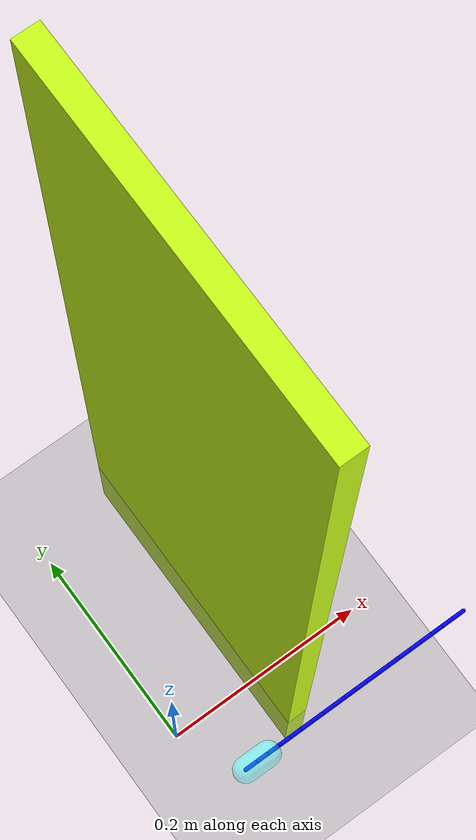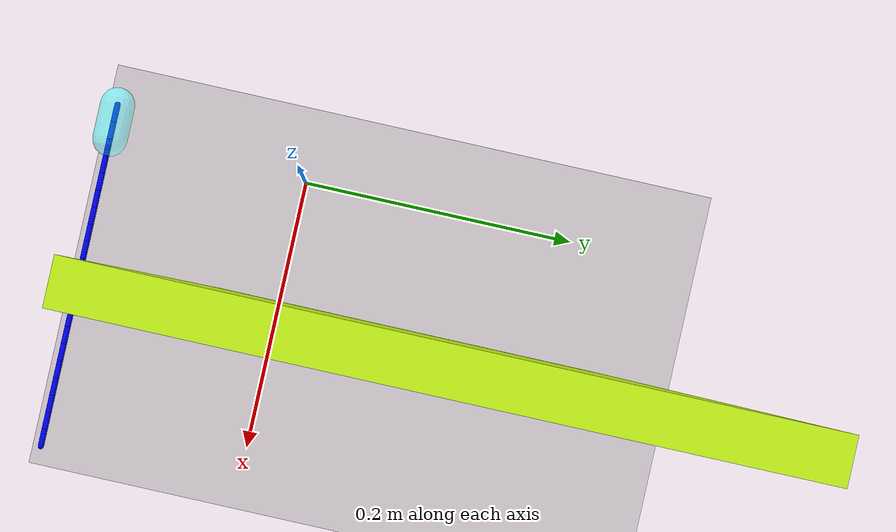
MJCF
<mujoco model="Whisker">
  <compiler angle="radian"/>

  <option timestep="0.0002" gravity="0 0 0"/>

  <visual>
    <global elevation="0"/>
  </visual>

  <statistic extent="1" center="0 0 0.2"/>

  <default>
    <geom solref="0.0002 0.009" solimp="0.95 0.99 0.0001" margin="0.0015"/>
  </default>

  <extension>
    <plugin plugin="mujoco.elasticity.cable">
      <instance name="compositeCompositeNylon">
        <config key="twist" value="1e10"/>
        <config key="bend" value="3.1e9"/>
        <config key="vmax" value="0.1"/>
      </instance>
    </plugin>
  </extension>

  <custom>
    <text name="composite_CompositeNylon" data="rope_CompositeNylon"/>
  </custom>

  <asset>
    <texture type="2d" name="texplane" builtin="checker" mark="cross" rgb1="0.2 0.3 0.4" rgb2="0.1 0.15 0.2" markrgb="0.8 0.8 0.8" width="512" height="512"/>
    <material name="matplane" texture="texplane" texuniform="true" texrepeat="10 10" reflectance="0.3"/>
  </asset>

  <worldbody>
    <geom name="ground" size="0 0 1" type="plane" condim="1" />
    <geom name="wall" size="0.01 0.15 0.5" pos="0.1 0.1 0.4" type="box" contype="2" mass="1000000" rgba="0.8 1.2 0.1 1"/>
    <light pos="0 0 2" dir="0 0 -1" castshadow="false" diffuse="0.4 0.4 0.4" specular="0.1 0.1 0.1"/>
    <light pos="0 0 4" dir="0 0 -1" directional="true" diffuse="0.8 0.8 0.8" specular="0.2 0.2 0.2"/>
    <body name="Composit_whisker_body_Nylon6/6" pos="0 -0.1 0.4">
      <joint name="slidey" pos="0 0 0" axis="0 1 0" type="slide" range="-1 1" damping="100"/>

      <body name="CompositeNylonB_first">
        <geom name="CompositeNylonG0" size="0.0017 0.005" pos="0.005 0 0" quat="0.707107 0 -0.707107 0" type="capsule" conaffinity="2" contype="2" friction="1 0.1 0.1" solref="0.02 1" solimp="0.9 0.95 0.001" margin="0.015" mass="0.0001" rgba="0 0 1 1"/>
        <site name="CompositeNylonS_first" pos="0 0 0" group="3"/>
        <plugin instance="compositeCompositeNylon"/>
        <body name="CompositeNylonB_1" pos="0.01 0 0">
          <site name="conti_whis_base_site_Nylon6/6" pos="0.0 0 0" size="0.01 0.01" type="capsule" rgba="0 1 1 0.4" quat="0.707107 0 0.707107 0"/>
          <joint name="CompositeNylonJ_1" pos="0 0 0" type="ball" group="3" stiffness="1.931" actuatorfrclimited="false" damping="0.04"/>
          <geom name="CompositeNylonG1" size="0.0017 0.005" pos="0.005 0 0" quat="0.707107 0 -0.707107 0" type="capsule" conaffinity="2"  contype="2" friction="1 0.1 0.1" solref="0.02 1" solimp="0.9 0.95 0.001" margin="0.015" mass="0.0001" rgba="0 0 1 1"/>
          <plugin instance="compositeCompositeNylon"/>
          <body name="CompositeNylonB_2" pos="0.01 0 0">
            <joint name="CompositeNylonJ_2" pos="0 0 0" type="ball" group="3" stiffness="1.931" actuatorfrclimited="false" damping="0.04"/>
            <geom name="CompositeNylonG2" size="0.0017 0.005" pos="0.005 0 0" quat="0.707107 0 -0.707107 0" type="capsule" conaffinity="2"   contype="2" friction="1 0.1 0.1" solref="0.02 1" solimp="0.9 0.95 0.001" margin="0.015" mass="0.0001" rgba="0 0 1 1"/>
            <plugin instance="compositeCompositeNylon"/>
            <body name="CompositeNylonB_3" pos="0.01 0 0">
              <joint name="CompositeNylonJ_3" pos="0 0 0" type="ball" group="3" stiffness="1.931" actuatorfrclimited="false" damping="0.04"/>
              <geom name="CompositeNylonG3" size="0.0017 0.005" pos="0.005 0 0" quat="0.707107 0 -0.707107 0" type="capsule" conaffinity="2"  contype="2" friction="1 0.1 0.1" solref="0.02 1" solimp="0.9 0.95 0.001" margin="0.015" mass="0.0001" rgba="0 0 1 1"/>
              <plugin instance="compositeCompositeNylon"/>
              <body name="CompositeNylonB_4" pos="0.01 0 0">
                <joint name="CompositeNylonJ_4" pos="0 0 0" type="ball" group="3" stiffness="1.931" actuatorfrclimited="false" damping="0.04"/>
                <geom name="CompositeNylonG4" size="0.0017 0.005" pos="0.005 0 0" quat="0.707107 0 -0.707107 0" type="capsule" conaffinity="2"   contype="2" friction="1 0.1 0.1" solref="0.02 1" solimp="0.9 0.95 0.001" margin="0.015" mass="0.0001" rgba="0 0 1 1"/>
                <plugin instance="compositeCompositeNylon"/>
                <body name="CompositeNylonB_5" pos="0.01 0 0">
                  <joint name="CompositeNylonJ_5" pos="0 0 0" type="ball" group="3" stiffness="1.931" actuatorfrclimited="false" damping="0.04"/>
                  <geom name="CompositeNylonG5" size="0.0017 0.005" pos="0.005 0 0" quat="0.707107 0 -0.707107 0" type="capsule" conaffinity="2"  contype="2" friction="1 0.1 0.1" solref="0.02 1" solimp="0.9 0.95 0.001" margin="0.015" mass="0.0001" rgba="0 0 1 1"/>
                  <plugin instance="compositeCompositeNylon"/>
                  <body name="CompositeNylonB_6" pos="0.01 0 0">
                    <joint name="CompositeNylonJ_6" pos="0 0 0" type="ball" group="3" stiffness="1.931" actuatorfrclimited="false" damping="0.04"/>
                    <geom name="CompositeNylonG6" size="0.0017 0.005" pos="0.005 0 0" quat="0.707107 0 -0.707107 0" type="capsule" conaffinity="2"  contype="2" friction="1 0.1 0.1" solref="0.02 1" solimp="0.9 0.95 0.001" margin="0.015" mass="0.0001" rgba="0 0 1 1"/>
                    <plugin instance="compositeCompositeNylon"/>
                    <body name="CompositeNylonB_7" pos="0.01 0 0">
                      <joint name="CompositeNylonJ_7" pos="0 0 0" type="ball" group="3" stiffness="1.931" actuatorfrclimited="false" damping="0.04"/>
                      <geom name="CompositeNylonG7" size="0.0017 0.005" pos="0.005 0 0" quat="0.707107 0 -0.707107 0" type="capsule" conaffinity="2"  contype="2" friction="1 0.1 0.1" solref="0.02 1" solimp="0.9 0.95 0.001" margin="0.015" mass="0.0001" rgba="0 0 1 1"/>
                      <plugin instance="compositeCompositeNylon"/>
                      <body name="CompositeNylonB_8" pos="0.01 0 0">
                        <joint name="CompositeNylonJ_8" pos="0 0 0" type="ball" group="3" stiffness="1.931" actuatorfrclimited="false" damping="0.04"/>
                        <geom name="CompositeNylonG8" size="0.0017 0.005" pos="0.005 0 0" quat="0.707107 0 -0.707107 0" type="capsule" conaffinity="2"  contype="2" friction="1 0.1 0.1" solref="0.02 1" solimp="0.9 0.95 0.001" margin="0.015" mass="0.0001" rgba="0 0 1 1"/>
                        <plugin instance="compositeCompositeNylon"/>
                        <body name="CompositeNylonB_9" pos="0.01 0 0">
                          <joint name="CompositeNylonJ_9" pos="0 0 0" type="ball" group="3" stiffness="1.931" actuatorfrclimited="false" damping="0.04"/>
                          <geom name="CompositeNylonG9" size="0.0017 0.005" pos="0.005 0 0" quat="0.707107 0 -0.707107 0" type="capsule" conaffinity="2"  contype="2" friction="1 0.1 0.1" solref="0.02 1" solimp="0.9 0.95 0.001" margin="0.015" mass="0.0001" rgba="0 0 1 1"/>
                          <plugin instance="compositeCompositeNylon"/>
                          <body name="CompositeNylonB_10" pos="0.01 0 0">
                            <joint name="CompositeNylonJ_10" pos="0 0 0" type="ball" group="3" stiffness="1.931" actuatorfrclimited="false" damping="0.04"/>
                            <geom name="CompositeNylonG10" size="0.0017 0.005" pos="0.005 0 0" quat="0.707107 0 -0.707107 0" type="capsule" conaffinity="2"  contype="2" friction="1 0.1 0.1" solref="0.02 1" solimp="0.9 0.95 0.001" margin="0.015" mass="0.0001" rgba="0 0 1 1"/>
                            <plugin instance="compositeCompositeNylon"/>
                            <body name="CompositeNylonB_11" pos="0.01 0 0">
                              <joint name="CompositeNylonJ_11" pos="0 0 0" type="ball" group="3" stiffness="1.931" actuatorfrclimited="false" damping="0.04"/>
                              <geom name="CompositeNylonG11" size="0.0017 0.005" pos="0.005 0 0" quat="0.707107 0 -0.707107 0" type="capsule" conaffinity="2"  contype="2" friction="1 0.1 0.1" solref="0.02 1" solimp="0.9 0.95 0.001" margin="0.015" mass="0.0001" rgba="0 0 1 1"/>
                              <plugin instance="compositeCompositeNylon"/>
                              <body name="CompositeNylonB_12" pos="0.01 0 0">
                                <joint name="CompositeNylonJ_12" pos="0 0 0" type="ball" group="3" stiffness="1.931" actuatorfrclimited="false" damping="0.04"/>
                                <geom name="CompositeNylonG12" size="0.0017 0.005" pos="0.005 0 0" quat="0.707107 0 -0.707107 0" type="capsule" conaffinity="2"  contype="2" friction="1 0.1 0.1" solref="0.02 1" solimp="0.9 0.95 0.001" margin="0.015" mass="0.0001" rgba="0 0 1 1"/>
                                <plugin instance="compositeCompositeNylon"/>
                                <body name="CompositeNylonB_13" pos="0.01 0 0">
                                  <joint name="CompositeNylonJ_13" pos="0 0 0" type="ball" group="3" stiffness="1.931" actuatorfrclimited="false" damping="0.04"/>
                                  <geom name="CompositeNylonG13" size="0.0017 0.005" pos="0.005 0 0" quat="0.707107 0 -0.707107 0" type="capsule" conaffinity="2"  contype="2" friction="1 0.1 0.1" solref="0.02 1" solimp="0.9 0.95 0.001" margin="0.015" mass="0.0001" rgba="0 0 1 1"/>
                                  <plugin instance="compositeCompositeNylon"/>
                                  <body name="CompositeNylonB_14" pos="0.01 0 0">
                                    <joint name="CompositeNylonJ_14" pos="0 0 0" type="ball" group="3" stiffness="1.931" actuatorfrclimited="false" damping="0.04"/>
                                    <geom name="CompositeNylonG14" size="0.0017 0.005" pos="0.005 0 0" quat="0.707107 0 -0.707107 0" type="capsule" conaffinity="2"  contype="2"  friction="1 0.1 0.1" solref="0.02 1" solimp="0.9 0.95 0.001" margin="0.015" mass="0.0001" rgba="0 0 1 1"/>
                                    <plugin instance="compositeCompositeNylon"/>
                                    <body name="CompositeNylonB_15" pos="0.01 0 0">
                                      <joint name="CompositeNylonJ_15" pos="0 0 0" type="ball" group="3" stiffness="1.931" actuatorfrclimited="false" damping="0.04"/>
                                      <geom name="CompositeNylonG15" size="0.0017 0.005" pos="0.005 0 0" quat="0.707107 0 -0.707107 0" type="capsule" conaffinity="2"  contype="2" friction="1 0.1 0.1" solref="0.02 1" solimp="0.9 0.95 0.001" margin="0.015" mass="0.0001" rgba="0 0 1 1"/>
                                      <plugin instance="compositeCompositeNylon"/>
                                      <body name="CompositeNylonB_16" pos="0.00999999 0 0">
                                        <joint name="CompositeNylonJ_16" pos="0 0 0" type="ball" group="3" stiffness="1.931" actuatorfrclimited="false" damping="0.04"/>
                                        <geom name="CompositeNylonG16" size="0.0017 0.005" pos="0.005 0 0" quat="0.707107 0 -0.707107 0" type="capsule" conaffinity="2"  contype="2" friction="1 0.1 0.1" solref="0.02 1" solimp="0.9 0.95 0.001" margin="0.015" mass="0.0001" rgba="0 0 1 1"/>
                                        <plugin instance="compositeCompositeNylon"/>
                                        <body name="CompositeNylonB_17" pos="0.01 0 0">
                                          <joint name="CompositeNylonJ_17" pos="0 0 0" type="ball" group="3" stiffness="1.931" actuatorfrclimited="false" damping="0.04"/>
                                          <geom name="CompositeNylonG17" size="0.0017 0.005" pos="0.005 0 0" quat="0.707107 0 -0.707107 0" type="capsule" conaffinity="2"   contype="2" friction="1 0.1 0.1" solref="0.02 1" solimp="0.9 0.95 0.001" margin="0.015" mass="0.0001" rgba="0 0 1 1"/>
                                          <plugin instance="compositeCompositeNylon"/>
                                          <body name="CompositeNylonB_18" pos="0.01 0 0">
                                            <joint name="CompositeNylonJ_18" pos="0 0 0" type="ball" group="3" stiffness="1.931" actuatorfrclimited="false" damping="0.04"/>
                                            <geom name="CompositeNylonG18" size="0.0017 0.005" pos="0.005 0 0" quat="0.707107 0 -0.707107 0" type="capsule" conaffinity="2"  contype="2" friction="1 0.1 0.1" solref="0.02 1" solimp="0.9 0.95 0.001" margin="0.015" mass="0.0001" rgba="0 0 1 1"/>
                                            <plugin instance="compositeCompositeNylon"/>
                                            <body name="CompositeNylonB_last" pos="0.00999999 0 0">
                                              <joint name="CompositeNylonJ_last" pos="0 0 0" type="ball" group="3" stiffness="1.931" actuatorfrclimited="false" damping="0.04"/>
                                              <geom name="CompositeNylonG19" size="0.0017 0.005" pos="0.005 0 0" quat="0.707107 0 -0.707107 0" type="capsule" conaffinity="2"  contype="2" friction="1 0.1 0.1" solref="0.02 1" solimp="0.9 0.95 0.001" margin="0.015" mass="0.0001" rgba="0 0 1 1"/>
                                              <site name="CompositeNylonS_last" pos="0.01 0 0" group="3"/>
                                              <plugin instance="compositeCompositeNylon"/>
                                            </body>
                                          </body>
                                        </body>
                                      </body>
                                    </body>
                                  </body>
                                </body>
                              </body>
                            </body>
                          </body>
                        </body>
                      </body>
                    </body>
                  </body>
                </body>
              </body>
            </body>
          </body>
        </body>
      </body>
    </body>
  </worldbody>

  <contact>
    <exclude body1="CompositeNylonB_first" body2="CompositeNylonB_1"/>
    <exclude body1="CompositeNylonB_1" body2="CompositeNylonB_2"/>
    <exclude body1="CompositeNylonB_2" body2="CompositeNylonB_3"/>
    <exclude body1="CompositeNylonB_3" body2="CompositeNylonB_4"/>
    <exclude body1="CompositeNylonB_4" body2="CompositeNylonB_5"/>
    <exclude body1="CompositeNylonB_5" body2="CompositeNylonB_6"/>
    <exclude body1="CompositeNylonB_6" body2="CompositeNylonB_7"/>
    <exclude body1="CompositeNylonB_7" body2="CompositeNylonB_8"/>
    <exclude body1="CompositeNylonB_8" body2="CompositeNylonB_9"/>
    <exclude body1="CompositeNylonB_9" body2="CompositeNylonB_10"/>
    <exclude body1="CompositeNylonB_10" body2="CompositeNylonB_11"/>
    <exclude body1="CompositeNylonB_11" body2="CompositeNylonB_12"/>
    <exclude body1="CompositeNylonB_12" body2="CompositeNylonB_13"/>
    <exclude body1="CompositeNylonB_13" body2="CompositeNylonB_14"/>
    <exclude body1="CompositeNylonB_14" body2="CompositeNylonB_15"/>
    <exclude body1="CompositeNylonB_15" body2="CompositeNylonB_16"/>
    <exclude body1="CompositeNylonB_16" body2="CompositeNylonB_17"/>
    <exclude body1="CompositeNylonB_17" body2="CompositeNylonB_18"/>
    <exclude body1="CompositeNylonB_18" body2="CompositeNylonB_last"/>
  </contact>

  <actuator>
    <general name="move_y" joint="slidey" ctrlrange="-20 20" biastype="affine" biasprm="0 0 -1"/>
  </actuator>

  <sensor>
    <force site="conti_whis_base_site_Nylon6/6" name="base_force_sensor"/>
    <torque site="conti_whis_base_site_Nylon6/6" name="base_torque_sensor"/>
  </sensor>
</mujoco>
